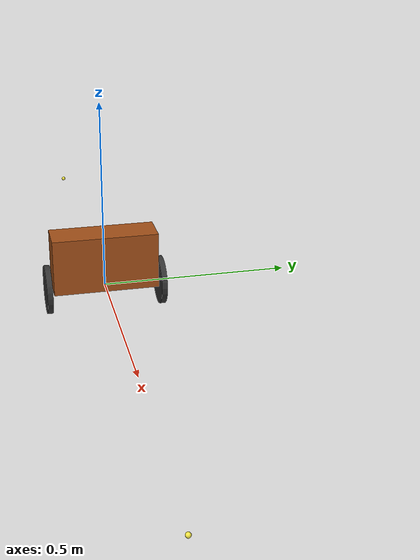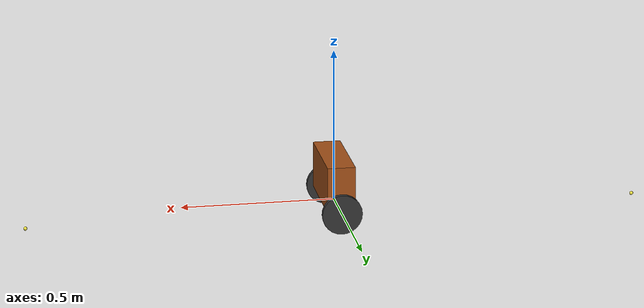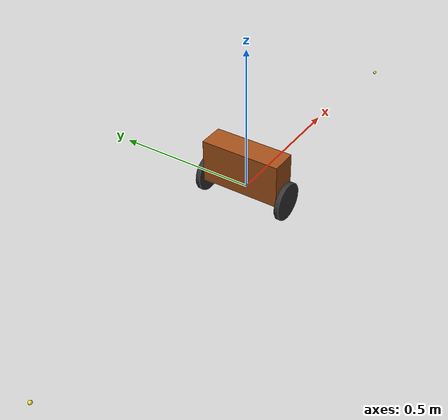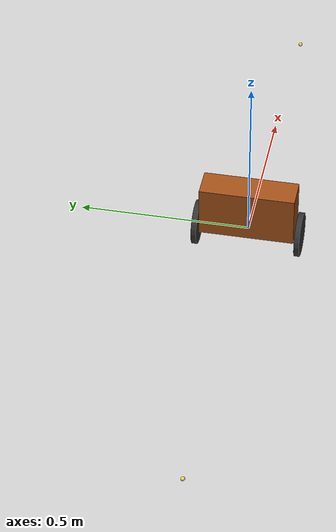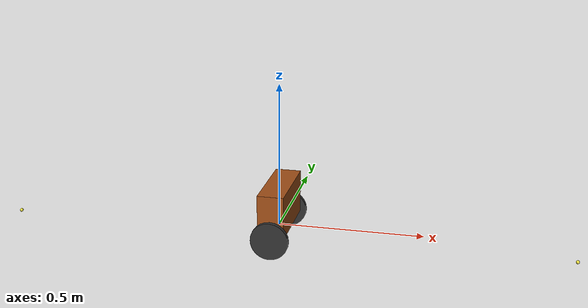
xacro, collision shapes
<?xml version="1.0"?>
<robot name="teeterbot" xmlns:xacro="http://www.ros.org/wiki/xacro">
  <xacro:include filename="$(find teeterbot_description)/urdf/teeterbot_friction.urdf"/>

  <xacro:arg name="pub_ground_truth" default="0" />
  <xacro:arg name="auto_reset_orientation" default="0" />
  <xacro:arg name="auto_reset_delay" default="2.0" />

  <xacro:arg name="wheel_mass" default="0.055" />
  <xacro:arg name="wheel_radius" default="0.065" />
  <xacro:arg name="body_mass" default="2.464" />
  <xacro:arg name="body_width" default="0.280" />
  <xacro:arg name="body_depth" default="0.090" />
  <xacro:arg name="body_length" default="0.152" />
  <xacro:arg name="training_wheels" default="true" />

  <xacro:property name="wheel_mass" value="$(arg wheel_mass)" />
  <xacro:property name="wheel_radius" value="$(arg wheel_radius)" />
  <xacro:property name="wheel_thickness" value="0.015" />
  <xacro:property name="wheelbase" value="${0.025 + body_width}" />

  <xacro:property name="body_mass" value="$(arg body_mass)" />
  <xacro:property name="body_width" value="$(arg body_width)" />
  <xacro:property name="body_depth" value="$(arg body_depth)" />
  <xacro:property name="body_length" value="$(arg body_length)" />

  <gazebo>
    <plugin name="hector_gazebo_imu" filename="libhector_gazebo_ros_imu.so">
      <bodyName>body_com</bodyName>
      <topicName>imu</topicName>
      <gaussianNoise>0.0</gaussianNoise>
      <xyzOffset>0 0 0</xyzOffset>
      <rpyOffset>0 0 0</rpyOffset>
    </plugin>
    <plugin name="teeterbot_interface" filename="libteeterbot_gazebo_plugin.so">
      <pubGroundTruth>$(arg pub_ground_truth)</pubGroundTruth>
      <autoResetOrientation>$(arg auto_reset_orientation)</autoResetOrientation>
      <autoResetDelay>$(arg auto_reset_delay)</autoResetDelay>
      <bodyLength>$(arg body_length)</bodyLength>
      <voltageMode>$(arg voltage_mode)</voltageMode>
      <torqueMode>$(arg torque_mode)</torqueMode>
      <speedMode>$(arg speed_mode)</speedMode>
    </plugin>
    <plugin name="joint_state_publisher" filename="libgazebo_ros_joint_state_publisher.so">
      <robotNamespace>$(arg robot_name)</robotNamespace>
      <jointName>
          left_wheel, right_wheel
      </jointName>
      <updateRate>100</updateRate>
      <alwaysOn>true</alwaysOn>
    </plugin>
  </gazebo>

  <xacro:macro name="wheel" params="name y_offset" >
    <link name="${name}" >
      <inertial>
        <origin xyz="0 0 0" rpy="0 0 0"/>
        <mass value="${wheel_mass}"/>
        <inertia ixx="${wheel_mass/12*(3*wheel_radius*wheel_radius + wheel_thickness*wheel_thickness)}" ixy="0" ixz="0" iyy="${wheel_mass/12*(3*wheel_radius*wheel_radius + wheel_thickness*wheel_thickness)}" iyz="0" izz="${wheel_mass/2 * wheel_radius*wheel_radius}"/>
      </inertial>
      <visual>
        <origin xyz="0 0 0" rpy="0 1.570796 0"/>
        <geometry>
            <!--cylinder radius="${wheel_radius}" length="${wheel_thickness}"/-->
            <mesh filename="package://teeterbot_description/models/Wheel.dae"/>
        </geometry>
        <material name="grey"/>
      </visual>
      <collision name="collision_${name}">
        <origin xyz="0 0 0" rpy="0 0 0"/>
        <geometry>
          <cylinder radius="${wheel_radius}" length="${wheel_thickness}"/>
        </geometry>
      </collision>
    </link>
    <joint name="${name}" type="continuous">
      <origin xyz="0 ${y_offset} 0" rpy="-1.570796 0 0"/>
      <parent link="base_link"/>
      <child link="${name}"/>
      <axis xyz="0 0 1" />
    </joint>
  </xacro:macro>

  <wheel name="left_wheel" y_offset="${wheelbase/2}" />
  <wheel name="right_wheel" y_offset="${-wheelbase/2}" />

  <link name="body_com">
    <inertial>
      <origin xyz="0 0 0" rpy="0 0 0"/>
      <mass value="${body_mass}"/>
      <inertia ixx="${body_mass/12 * (body_width*body_width + body_length*body_length)}" ixy="0" ixz="0" iyy="${body_mass/12 * (body_length*body_length + body_depth*body_depth)}" iyz="0" izz="${body_mass/12 * (body_width*body_width + body_depth*body_depth)}"/>
    </inertial>
    <visual>
      <origin xyz="0 0 -0.075" rpy="1.570796 0 1.570796"/>
      <geometry>
        <!--box size="${body_depth} ${body_width} ${body_length}"/-->
        <mesh filename="package://teeterbot_description/models/Base.dae"/>
      </geometry>
      <material name="orange"/>
    </visual>
    <collision name="collision_chassis">
      <origin xyz="0 0 0" rpy="0 0 0"/>
      <geometry>
        <box size="${body_depth} ${body_width} ${body_length}"/>
      </geometry>
    </collision>
  </link>

  <link name="base_link">
    <inertial>
      <origin xyz="0 0 0" rpy="0 0 0"/>
      <mass value="0.01"/>
      <inertia ixx="0.01" ixy="0" ixz="0" iyy="0.01" iyz="0" izz="0.01"/>
    </inertial>
    <xacro:if value="$(arg training_wheels)" >
      <collision name="training_wheel_1">
        <origin xyz="1 0 ${0.025-wheel_radius}" rpy="0 0 0"/>
        <geometry>
          <sphere radius="0.006"/>
        </geometry>
      </collision>
      <collision name="training_wheel_2">
        <origin xyz="-1 0 ${0.025-wheel_radius}" rpy="0 0 0"/>
        <geometry>
          <sphere radius="0.006"/>
        </geometry>
      </collision>
    </xacro:if>
  </link>

  <joint name="base_com" type="fixed">
    <origin xyz="0 0 ${body_length/2}" rpy="0 0 0"/>
    <parent link="base_link"/>
    <child link="body_com"/>
  </joint>

  <material name="grey">
    <color rgba="0.2 0.2 0.2 1.0"/>
  </material>

  <material name="orange">
    <color rgba="0.64 0.313939 0.095351 1.0"/>
  </material>
</robot>
